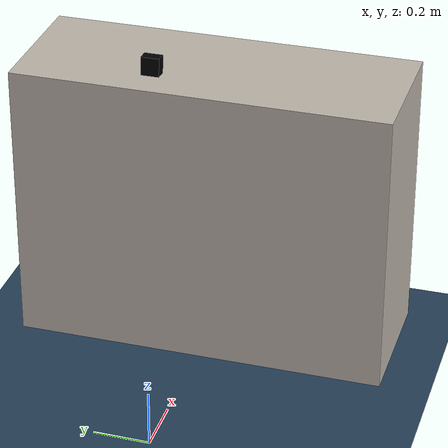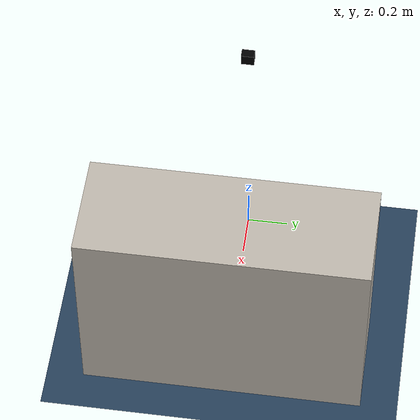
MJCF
<mujoco model="World">
  <compiler angle="radian" balanceinertia="true" inertiafromgeom="true"
    meshdir="../"
    texturedir="../"
    autolimits="true"/>
  <option integrator="Euler" cone="elliptic" solver="CG" noslip_iterations="2">
    <flag warmstart="disable" multiccd="enable"/>
  </option>
  <asset>
    <!-- background -->
    <texture type="skybox" builtin="flat" rgb1="1 1 1" rgb2="0 0 0" width="512" height="512"/>
    <texture name="grid" type="2d" builtin="checker" width="512" height="512" rgb1=".1 .2 .3" rgb2=".2 .3 .4"/>
    <material name="grid" texture="grid" texrepeat="2 2" texuniform="true" specular="0" shininess="0" reflectance="0" emission="1" />
    <!-- ceramic table texture and material-->
    <texture file="models/rs_table/ceramic.png" type="cube" name="tex-ceramic"/>
    <material name="table_ceramic" reflectance="0.0" shininess="0.0" specular="0.2" texrepeat="1 1" texture="tex-ceramic" />
  </asset>
  <worldbody>
    <geom name="floor" size="2 2 0.05" type="plane" material="grid" condim="3"/>
    <light directional="true" pos="-0.5 0.5 3" dir="0 0 -1" castshadow="false" diffuse="1 1 1"/>

    <body name="shelf_bottom_body" pos="0.8 0 0">
      <geom name="shelf_bottom" size="0.25 0.68 0.525" pos="0 0 0.525" type="box" material="table_ceramic"/>
    </body>

    <!-- Camera positioned at same height and angle as cam_torso from motoman mjmodel.xml -->
    <body name="body_cam_torso" pos="0.1 0 1.38" quat="0.52 0.48 -0.48 -0.52">
      <geom name="geom_cam_torso" size="0.03 0.03 0.02" type="box" contype="0" conaffinity="0" group="1" rgba="0 0 0 1"/>
      <camera name="cam_torso" pos="0 0 0" fovy="57"/>
    </body>

  </worldbody>
</mujoco>
